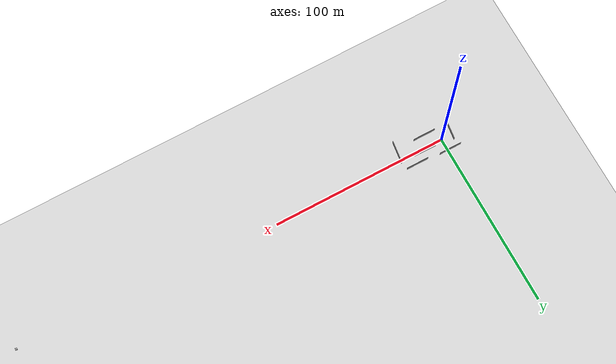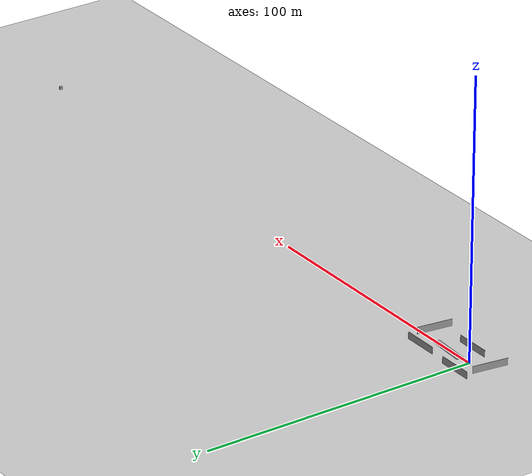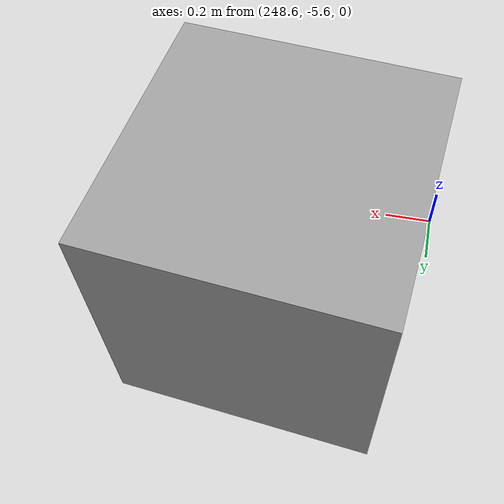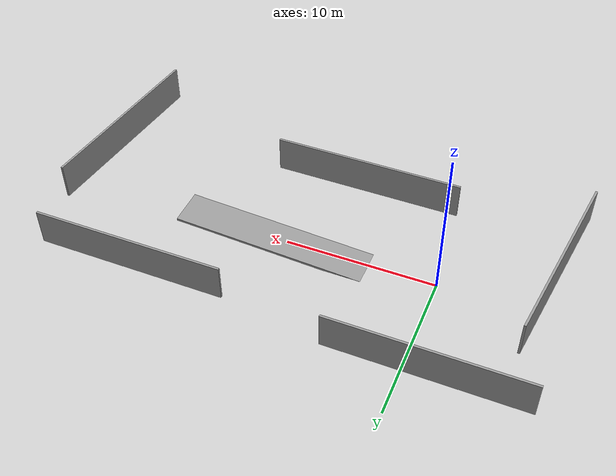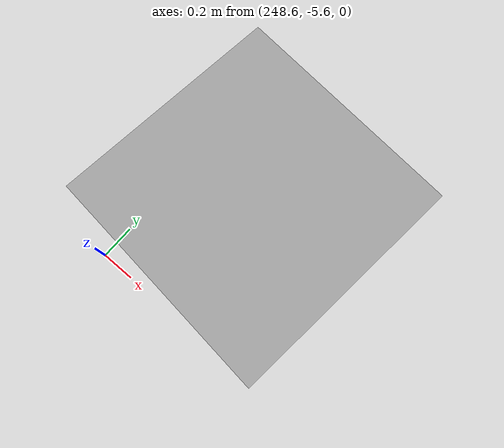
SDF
<sdf version="1.6">
 <world name="default">
  <light name="sun" type="directional">
   <cast_shadows>0</cast_shadows>
   <pose>0 0 10 0 -0 0</pose>
   <diffuse>0.8 0.8 0.8 1</diffuse>
   <specular>0.1 0.1 0.1 1</specular>
   <attenuation>
    <range>1000</range>
    <constant>0.9</constant>
    <linear>0.01</linear>
    <quadratic>0.001</quadratic>
   </attenuation>
   <direction>-0.5 0.5 -1</direction>
  </light>
  <gravity>0 0 -9.8</gravity>
  <magnetic_field>6e-06 2.3e-05 -4.2e-05</magnetic_field>
  <atmosphere type="adiabatic"/>
  <physics name="default_physics" default="0" type="ode">
   <max_step_size>0.001</max_step_size>
   <real_time_factor>1</real_time_factor>
   <real_time_update_rate>1000</real_time_update_rate>
  </physics>
  <scene><ambient>0.4 0.4 0.4 1</ambient><background>0.7 0.7 0.7 1</background><shadows>1</shadows></scene>
  <spherical_coordinates>
   <surface_model>EARTH_WGS84</surface_model>
   <latitude_deg>0</latitude_deg>
   <longitude_deg>0</longitude_deg>
   <elevation>0</elevation>
   <heading_deg>0</heading_deg>
  </spherical_coordinates>
  <model name="unit_box_clone_clone_1">
   <pose>249.195 -5.0222 0.5 -1.5708 -0 1.46317</pose>
   <link name="link">
    <inertial>
     <mass>1</mass>
     <inertia>
      <ixx>0.166667</ixx>
      <ixy>0</ixy>
      <ixz>0</ixz>
      <iyy>0.166667</iyy>
      <iyz>0</iyz>
      <izz>0.166667</izz>
     </inertia>
    </inertial>
    <collision name="collision"><geometry><box><size>1 1 1</size></box></geometry></collision>
    <visual name="visual">
     <geometry><box><size>1 1 1</size></box></geometry>
     <material>
      <script><name>Gazebo/Grey</name><uri>file://media/materials/scripts/gazebo.material</uri></script>
     </material>
    </visual>
   </link>
  </model>
  <model name="ground_plane">
   <static>1</static>
   <link name="link">
    <collision name="collision">
     <geometry><plane><normal>0 0 1</normal><size>100 100</size></plane></geometry>
     <surface>
      <contact><collide_bitmask>65535</collide_bitmask></contact>
      <friction><ode><mu>100</mu><mu2>50</mu2></ode></friction>
     </surface>
    </collision>
    <visual name="visual">
     <cast_shadows>0</cast_shadows>
     <geometry><plane><normal>0 0 1</normal><size>100 100</size></plane></geometry>
     <material>
      <script><uri>file://media/materials/scripts/gazebo.material</uri><name>Gazebo/Grey</name></script>
     </material>
    </visual>
   </link>
   <pose>4.73144 -6.28396 0 0 -0 0</pose>
  </model>
  <model name="walluse">
   <pose>10.8422 -1.06454 0.256844 -1.57064 -0.058159 -9e-06</pose>
   <link name="Wall_0">
    <collision name="Wall_0_Collision">
     <geometry><box><size>12.75 0.15 2.5</size></box></geometry>
     <pose>0 0 1.25 0 -0 0</pose>
    </collision>
    <visual name="Wall_0_Visual">
     <pose>0 0 1.25 0 -0 0</pose>
     <geometry><box><size>12.75 0.15 2.5</size></box></geometry>
     <material>
      <script><uri>file://media/materials/scripts/gazebo.material</uri><name>Gazebo/Grey</name></script>
      <ambient>1 1 1 1</ambient>
     </material>
     <meta><layer>0</layer></meta>
    </visual>
   </link>
   <static>1</static>
  </model>
  <model name="walluse_0">
   <pose>-1.378 6.84207 0 0 -0 0</pose>
   <link name="Wall_0">
    <collision name="Wall_0_Collision">
     <geometry><box><size>12.75 0.15 2.5</size></box></geometry>
     <pose>0 0 1.25 0 -0 0</pose>
    </collision>
    <visual name="Wall_0_Visual">
     <pose>0 0 1.25 0 -0 0</pose>
     <geometry><box><size>12.75 0.15 2.5</size></box></geometry>
     <material>
      <script><uri>file://media/materials/scripts/gazebo.material</uri><name>Gazebo/Grey</name></script>
      <ambient>1 1 1 1</ambient>
     </material>
     <meta><layer>0</layer></meta>
    </visual>
   </link>
   <static>1</static>
  </model>
  <model name="walluse_0_clone">
   <pose>6.99765 -6.54639 0 0 -0 0</pose>
   <link name="Wall_0">
    <collision name="Wall_0_Collision">
     <geometry><box><size>12.75 0.15 2.5</size></box></geometry>
     <pose>0 0 1.25 0 -0 0</pose>
    </collision>
    <visual name="Wall_0_Visual">
     <pose>0 0 1.25 0 -0 0</pose>
     <geometry><box><size>12.75 0.15 2.5</size></box></geometry>
     <material>
      <script><uri>file://media/materials/scripts/gazebo.material</uri><name>Gazebo/Grey</name></script>
      <ambient>1 1 1 1</ambient>
     </material>
     <meta><layer>0</layer></meta>
    </visual>
   </link>
   <static>1</static>
  </model>
  <model name="walluse_0_clone_0">
   <pose>18.1943 5.83343 0 0 -0 0</pose>
   <link name="Wall_0">
    <collision name="Wall_0_Collision">
     <geometry><box><size>12.75 0.15 2.5</size></box></geometry>
     <pose>0 0 1.25 0 -0 0</pose>
    </collision>
    <visual name="Wall_0_Visual">
     <pose>0 0 1.25 0 -0 0</pose>
     <geometry><box><size>12.75 0.15 2.5</size></box></geometry>
     <material>
      <script><uri>file://media/materials/scripts/gazebo.material</uri><name>Gazebo/Grey</name></script>
      <ambient>1 1 1 1</ambient>
     </material>
     <meta><layer>0</layer></meta>
    </visual>
   </link>
   <static>1</static>
  </model>
  <model name="walluse_0_clone_1">
   <pose>24.6524 -4.67606 0 0 -0 1.44016</pose>
   <link name="Wall_0">
    <collision name="Wall_0_Collision">
     <geometry><box><size>12.75 0.15 2.5</size></box></geometry>
     <pose>0 0 1.25 0 -0 0</pose>
    </collision>
    <visual name="Wall_0_Visual">
     <pose>0 0 1.25 0 -0 0</pose>
     <geometry><box><size>12.75 0.15 2.5</size></box></geometry>
     <material>
      <script><uri>file://media/materials/scripts/gazebo.material</uri><name>Gazebo/Grey</name></script>
      <ambient>1 1 1 1</ambient>
     </material>
     <meta><layer>0</layer></meta>
    </visual>
   </link>
   <static>1</static>
  </model>
  <model name="walluse_0_clone_1_clone">
   <pose>-6.73919 -3.16075 0 0 -0 1.44016</pose>
   <link name="Wall_0">
    <collision name="Wall_0_Collision">
     <geometry><box><size>12.75 0.15 2.5</size></box></geometry>
     <pose>0 0 1.25 0 -0 0</pose>
    </collision>
    <visual name="Wall_0_Visual">
     <pose>0 0 1.25 0 -0 0</pose>
     <geometry><box><size>12.75 0.15 2.5</size></box></geometry>
     <material>
      <script><uri>file://media/materials/scripts/gazebo.material</uri><name>Gazebo/Grey</name></script>
      <ambient>1 1 1 1</ambient>
     </material>
     <meta><layer>0</layer></meta>
    </visual>
   </link>
   <static>1</static>
  </model>
 </world>
</sdf>
